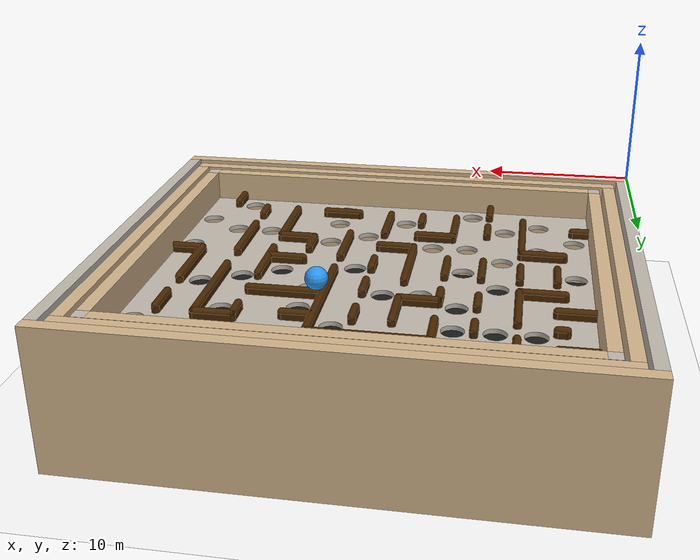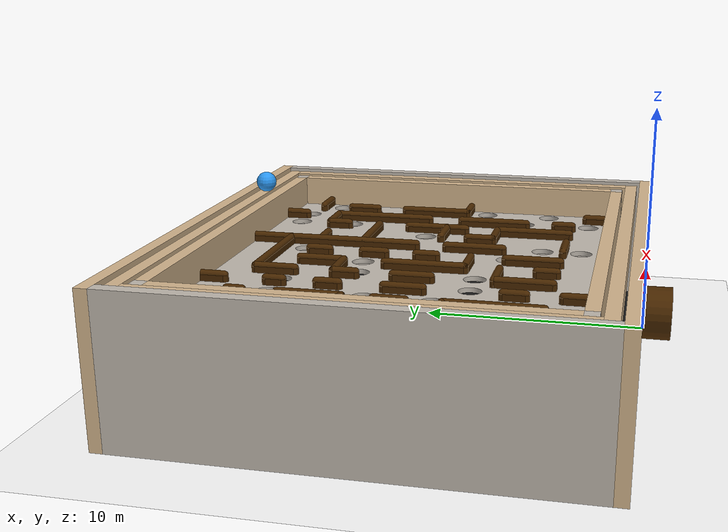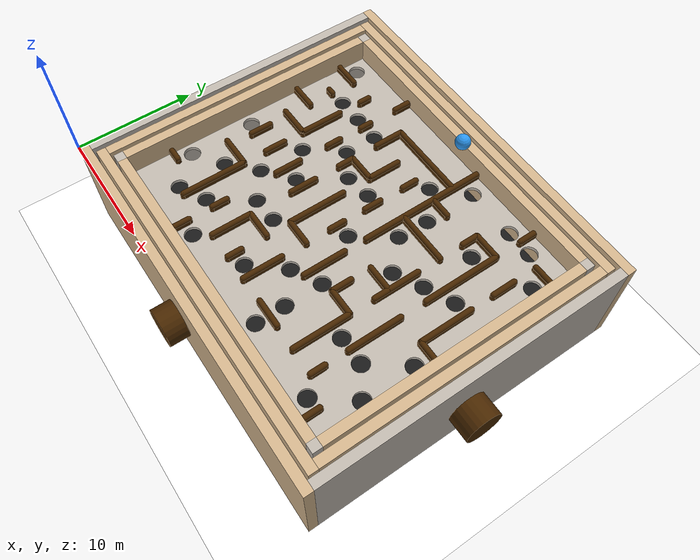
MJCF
<!-- A MuJoCo model of the CyberRunner Labyrinth-playing robot. Authored by: Brett Karopczyc -->
<mujoco model="cyberrunner">
    <asset>
        <texture type="skybox" builtin="gradient" rgb1="0.3 0.5 0.7" rgb2="0 0 0" width="512" height="3072"/>

        <material name="frame" class="frame" rgba=".8235 0.706 0.549 1"/>
        <material name="wall" rgba="0.285 0.151 0.00 1.0"/>
        <material name="ball" rgba="0.169 0.597 0.950 1"/>

        <texture name="outer_markers" type="cube" fileup="assets/outer_markers_up.png" filedown="assets/outer_markers_down.png" rgb1=".8235 0.706 0.549"/>
        <material name="outer_markers" class="frame" texture="outer_markers" texuniform="true"/>

        <texture name="inner_markers" type="cube" filefront="assets/inner_markers_front.png" rgb1=".8235 0.706 0.549"/>
        <material name="inner_markers" class="frame" texture="inner_markers"/>

        <mesh name="board_mesh" file="assets/board_mesh.obj" scale="0.1 0.1 0.1" inertia="exact"/>
        <texture name="board_face" type="2d" file="assets/labyrinth.png"/>
        <material name="board" class="frame" texture="board_face"/>
    </asset>

    <default>
        <!-- Update density for CGS units (g/cm^3) -->
        <geom density="1"/>

        <!-- Named classes -->
        <default class="frame">
            <geom material="frame" density="0.68"/>   <!-- Density of indoor beech wood is about 0.68 g/cm^3 -->
            <material specular="0.2"/>
        </default>
        <default class="walls">
            <geom material="wall" density="1.04"/>  <!-- Approximate density of ABS plastic. Not sure what type of plastic the walls are made from. -->
        </default>
    </default>

    <option gravity="0 0 -980.665" timestep="0.0005" integrator="implicitfast"/>   <!-- Gravity units are cm/s^2 -->

    <visual>
        <global offwidth="1280" offheight="720"/>
        <headlight ambient="0.3 0.3 0.3" diffuse="0.3 0.3 0.3" specular="0.3 0.3 0.3"/>
        <quality shadowsize="8192"/>
    </visual>

    <worldbody>
        <light diffuse="0.5 0.5 0.5" specular="0.3 0.3 0.3" pos="16.2 13.5 200" dir="0 0 -1"/>
        <geom type="plane" pos="0 0 -9.3" size="0 0 0.1" rgba="1 1 1 1"/>

        <camera name="intrinsic_cam" resolution="1280 720" sensorsize=".576 .360" focalpixel="396.115 395.558" principalpixel="2.914 -4.557" pos="16.6 14.3 25" zaxis="0 0 1"/>
        <camera name="fov_camera" resolution="1280 720" fovy="75" pos="16.6 14.3 25" zaxis="0 0 1"/>

        <body name="outer_frame" childclass="frame">
            <!-- Outer Frame -->
            <geom type="box" pos="16.6 0.4 -4.65" size="16.6 0.4 4.65"/>
            <geom type="box" pos="16.6 28.2 -4.65" size="16.6 0.4 4.65"/>
            <geom type="box" pos="0.4 14.3 -4.65" size="0.4 13.5 4.65" material="outer_markers"/>
            <geom type="box" pos="32.8 14.3 -4.65" size="0.4 13.5 4.65" material="outer_markers"/>
            <geom type="box" pos="16.6 14.3 -8.5" size="15.8 13.5 0.1" rgba="0.1 0.1 0.1 1"/>

            <!-- Knobs -->
            <geom type="cylinder" size="1.6" fromto="15.6 0 -4.4 15.6 -1.7 -4.4" class="walls"/>
            <geom type="cylinder" size="1.6" fromto="33.2 13.7 -5.0 35.2 13.7 -5.0" class="walls"/>

            <body name="middle_frame" childclass="frame" pos="1 1 -0.2">
                <joint name="y_rot" type="hinge" axis="0 1 0" pos="15.6 0 -1.0" range="-8 8" limited="true" solimplimit="0.995 0.999 0.1 0.5 1"/>

                <!-- Middle Frame -->
                <geom type="box" pos="15.6 0.4 -1.0" size="15.6 0.4 1.0"/>
                <geom type="box" pos="15.6 26.2 -1.0" size="15.6 0.4 1.0"/>
                <geom type="box" pos="0.4 13.3 -1.0" size="0.4 12.5 1.0"/>
                <geom type="box" pos="30.8 13.3 -1.0" size="0.4 12.5 1.0"/>

                <body name="inner_frame" childclass="frame" pos="1.05 1 -0.1">
                    <joint name="x_rot" type="hinge" axis="1 0 0" pos="0 12.3 -1.0" range="-8 8" limited="true" solimplimit="0.995 0.999 0.1 0.5 1"/>

                    <!-- Inner Frame -->
                    <geom type="box" pos="14.55 0.4 -1.0" size="13.75 0.4 1.0"/>
                    <geom type="box" pos="14.55 24.2 -1.0" size="13.75 0.4 1.0"/>
                    <geom type="box" pos="0.4 12.3 -1.0" size="0.4 11.5 1.0"/>
                    <geom type="box" pos="28.7 12.3 -1.0" size="0.4 11.5 1.0"/>
                    <geom type="box" pos="0.4 0.4 -1.0" size="0.4 0.4 1.0" material="inner_markers"/>
                    <geom type="box" pos="28.7 0.4 -1.0" size="0.4 0.4 1.0" material="inner_markers"/>
                    <geom type="box" pos="0.4 24.2 -1.0" size="0.4 0.4 1.0" material="inner_markers"/>
                    <geom type="box" pos="28.7 24.2 -1.0" size="0.4 0.4 1.0" material="inner_markers"/>

                    <!-- Labyrinth Board -->
                    <body name="board" pos="0.8 0.8 -2.0">
                        <geom type="mesh" mesh="board_mesh" material="board"/>
                        <body name="walls" childclass="walls">
                            <include file="cyberrunner_walls.xml"/>
                        </body>
                    </body>
                </body>
            </body>
        </body>

        <body name="ball" pos="18 24.5 2.0">
            <freejoint name="ball_joint"/>
            <!-- A GraviTrax marble has a radius of 6.35mm (0.25 inches) and weighs about 8.5g -->
            <!-- The calculated density below is in grams/cm^3 -->
            <geom type="sphere" size="0.635" material="ball" density="7.925" solimp="0.99 0.99 0.01" solref="0.001 1"/>
        </body>
    </worldbody>

    <actuator>
        <velocity name="tilt_y" joint="x_rot" gear="1500" ctrllimited="true" ctrlrange="-4000 4000" kv="55"/>
        <velocity name="tilt_x" joint="y_rot" gear="1500" ctrllimited="true" ctrlrange="-4000 4000" kv="55"/>
    </actuator>
</mujoco>

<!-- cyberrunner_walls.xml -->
<mujoco model="cyberrunner_walls">
    <geom type="box" size="0.250" fromto="0.000 20.450 0.150 2.250 20.450 0.150" />
    <geom type="cylinder" size="0.250" fromto="0.000 20.450 0 0.000 20.450 0.400" />
    <geom type="cylinder" size="0.250" fromto="2.250 20.450 0 2.250 20.450 0.400" />
    <geom type="capsule" size="0.250" fromto="0.000 20.450 0.400 2.250 20.450 0.400" />
    <geom type="box" size="0.250" fromto="0.000 15.900 0.150 2.250 15.900 0.150" />
    <geom type="cylinder" size="0.250" fromto="0.000 15.900 0 0.000 15.900 0.400" />
    <geom type="cylinder" size="0.250" fromto="2.250 15.900 0 2.250 15.900 0.400" />
    <geom type="capsule" size="0.250" fromto="0.000 15.900 0.400 2.250 15.900 0.400" />
    <geom type="box" size="0.250" fromto="1.750 18.200 0.150 2.250 18.200 0.150" />
    <geom type="cylinder" size="0.250" fromto="1.750 18.200 0 1.750 18.200 0.400" />
    <geom type="cylinder" size="0.250" fromto="2.250 18.200 0 2.250 18.200 0.400" />
    <geom type="capsule" size="0.250" fromto="1.750 18.200 0.400 2.250 18.200 0.400" />
    <geom type="box" size="0.250" fromto="9.200 20.450 0.150 16.200 20.450 0.150" />
    <geom type="cylinder" size="0.250" fromto="9.200 20.450 0 9.200 20.450 0.400" />
    <geom type="cylinder" size="0.250" fromto="16.200 20.450 0 16.200 20.450 0.400" />
    <geom type="capsule" size="0.250" fromto="9.200 20.450 0.400 16.200 20.450 0.400" />
    <geom type="box" size="0.250" fromto="9.200 15.550 0.150 11.600 15.550 0.150" />
    <geom type="cylinder" size="0.250" fromto="9.200 15.550 0 9.200 15.550 0.400" />
    <geom type="cylinder" size="0.250" fromto="11.600 15.550 0 11.600 15.550 0.400" />
    <geom type="capsule" size="0.250" fromto="9.200 15.550 0.400 11.600 15.550 0.400" />
    <geom type="box" size="0.250" fromto="1.750 13.700 0.150 4.500 13.700 0.150" />
    <geom type="cylinder" size="0.250" fromto="1.750 13.700 0 1.750 13.700 0.400" />
    <geom type="cylinder" size="0.250" fromto="4.500 13.700 0 4.500 13.700 0.400" />
    <geom type="capsule" size="0.250" fromto="1.750 13.700 0.400 4.500 13.700 0.400" />
    <geom type="box" size="0.250" fromto="1.750 7.950 0.150 4.500 7.950 0.150" />
    <geom type="cylinder" size="0.250" fromto="1.750 7.950 0 1.750 7.950 0.400" />
    <geom type="cylinder" size="0.250" fromto="4.500 7.950 0 4.500 7.950 0.400" />
    <geom type="capsule" size="0.250" fromto="1.750 7.950 0.400 4.500 7.950 0.400" />
    <geom type="box" size="0.250" fromto="0.000 3.650 0.150 1.100 3.650 0.150" />
    <geom type="cylinder" size="0.250" fromto="0.000 3.650 0 0.000 3.650 0.400" />
    <geom type="cylinder" size="0.250" fromto="1.100 3.650 0 1.100 3.650 0.400" />
    <geom type="capsule" size="0.250" fromto="0.000 3.650 0.400 1.100 3.650 0.400" />
    <geom type="box" size="0.250" fromto="9.200 5.800 0.150 11.600 5.800 0.150" />
    <geom type="cylinder" size="0.250" fromto="9.200 5.800 0 9.200 5.800 0.400" />
    <geom type="cylinder" size="0.250" fromto="11.600 5.800 0 11.600 5.800 0.400" />
    <geom type="capsule" size="0.250" fromto="9.200 5.800 0.400 11.600 5.800 0.400" />
    <geom type="box" size="0.250" fromto="11.600 7.950 0.150 13.900 7.950 0.150" />
    <geom type="cylinder" size="0.250" fromto="11.600 7.950 0 11.600 7.950 0.400" />
    <geom type="cylinder" size="0.250" fromto="13.900 7.950 0 13.900 7.950 0.400" />
    <geom type="capsule" size="0.250" fromto="11.600 7.950 0.400 13.900 7.950 0.400" />
    <geom type="box" size="0.250" fromto="16.200 15.550 0.150 20.800 15.550 0.150" />
    <geom type="cylinder" size="0.250" fromto="16.200 15.550 0 16.200 15.550 0.400" />
    <geom type="cylinder" size="0.250" fromto="20.800 15.550 0 20.800 15.550 0.400" />
    <geom type="capsule" size="0.250" fromto="16.200 15.550 0.400 20.800 15.550 0.400" />
    <geom type="box" size="0.250" fromto="16.200 18.450 0.150 18.000 18.450 0.150" />
    <geom type="cylinder" size="0.250" fromto="16.200 18.450 0 16.200 18.450 0.400" />
    <geom type="cylinder" size="0.250" fromto="18.000 18.450 0 18.000 18.450 0.400" />
    <geom type="capsule" size="0.250" fromto="16.200 18.450 0.400 18.000 18.450 0.400" />
    <geom type="box" size="0.250" fromto="16.200 2.400 0.150 18.600 2.400 0.150" />
    <geom type="cylinder" size="0.250" fromto="16.200 2.400 0 16.200 2.400 0.400" />
    <geom type="cylinder" size="0.250" fromto="18.600 2.400 0 18.600 2.400 0.400" />
    <geom type="capsule" size="0.250" fromto="16.200 2.400 0.400 18.600 2.400 0.400" />
    <geom type="box" size="0.250" fromto="18.500 7.250 0.150 20.800 7.250 0.150" />
    <geom type="cylinder" size="0.250" fromto="18.500 7.250 0 18.500 7.250 0.400" />
    <geom type="cylinder" size="0.250" fromto="20.800 7.250 0 20.800 7.250 0.400" />
    <geom type="capsule" size="0.250" fromto="18.500 7.250 0.400 20.800 7.250 0.400" />
    <geom type="box" size="0.250" fromto="18.500 10.750 0.150 20.800 10.750 0.150" />
    <geom type="cylinder" size="0.250" fromto="18.500 10.750 0 18.500 10.750 0.400" />
    <geom type="cylinder" size="0.250" fromto="20.800 10.750 0 20.800 10.750 0.400" />
    <geom type="capsule" size="0.250" fromto="18.500 10.750 0.400 20.800 10.750 0.400" />
    <geom type="box" size="0.250" fromto="20.800 19.150 0.150 23.100 19.150 0.150" />
    <geom type="cylinder" size="0.250" fromto="20.800 19.150 0 20.800 19.150 0.400" />
    <geom type="cylinder" size="0.250" fromto="23.100 19.150 0 23.100 19.150 0.400" />
    <geom type="capsule" size="0.250" fromto="20.800 19.150 0.400 23.100 19.150 0.400" />
    <geom type="box" size="0.250" fromto="25.500 10.150 0.150 27.600 10.150 0.150" />
    <geom type="cylinder" size="0.250" fromto="25.500 10.150 0 25.500 10.150 0.400" />
    <geom type="cylinder" size="0.250" fromto="27.600 10.150 0 27.600 10.150 0.400" />
    <geom type="capsule" size="0.250" fromto="25.500 10.150 0.400 27.600 10.150 0.400" />
    <geom type="box" size="0.250" fromto="25.500 21.000 0.150 27.600 21.000 0.150" />
    <geom type="cylinder" size="0.250" fromto="25.500 21.000 0 25.500 21.000 0.400" />
    <geom type="cylinder" size="0.250" fromto="27.600 21.000 0 27.600 21.000 0.400" />
    <geom type="capsule" size="0.250" fromto="25.500 21.000 0.400 27.600 21.000 0.400" />
    <geom type="box" size="0.250" fromto="4.500 19.550 0.150 4.500 20.450 0.150" />
    <geom type="cylinder" size="0.250" fromto="4.500 19.550 0 4.500 19.550 0.400" />
    <geom type="cylinder" size="0.250" fromto="4.500 20.450 0 4.500 20.450 0.400" />
    <geom type="capsule" size="0.250" fromto="4.500 19.550 0.400 4.500 20.450 0.400" />
    <geom type="box" size="0.250" fromto="4.500 13.700 0.150 4.500 17.450 0.150" />
    <geom type="cylinder" size="0.250" fromto="4.500 13.700 0 4.500 13.700 0.400" />
    <geom type="cylinder" size="0.250" fromto="4.500 17.450 0 4.500 17.450 0.400" />
    <geom type="capsule" size="0.250" fromto="4.500 13.700 0.400 4.500 17.450 0.400" />
    <geom type="box" size="0.250" fromto="6.900 14.550 0.150 6.900 15.850 0.150" />
    <geom type="cylinder" size="0.250" fromto="6.900 14.550 0 6.900 14.550 0.400" />
    <geom type="cylinder" size="0.250" fromto="6.900 15.850 0 6.900 15.850 0.400" />
    <geom type="capsule" size="0.250" fromto="6.900 14.550 0.400 6.900 15.850 0.400" />
    <geom type="box" size="0.250" fromto="6.900 17.950 0.150 6.900 18.950 0.150" />
    <geom type="cylinder" size="0.250" fromto="6.900 17.950 0 6.900 17.950 0.400" />
    <geom type="cylinder" size="0.250" fromto="6.900 18.950 0 6.900 18.950 0.400" />
    <geom type="capsule" size="0.250" fromto="6.900 17.950 0.400 6.900 18.950 0.400" />
    <geom type="box" size="0.250" fromto="6.900 21.550 0.150 6.900 23.100 0.150" />
    <geom type="cylinder" size="0.250" fromto="6.900 21.550 0 6.900 21.550 0.400" />
    <geom type="cylinder" size="0.250" fromto="6.900 23.100 0 6.900 23.100 0.400" />
    <geom type="capsule" size="0.250" fromto="6.900 21.550 0.400 6.900 23.100 0.400" />
    <geom type="box" size="0.250" fromto="9.200 14.150 0.150 9.200 15.550 0.150" />
    <geom type="cylinder" size="0.250" fromto="9.200 14.150 0 9.200 14.150 0.400" />
    <geom type="cylinder" size="0.250" fromto="9.200 15.550 0 9.200 15.550 0.400" />
    <geom type="capsule" size="0.250" fromto="9.200 14.150 0.400 9.200 15.550 0.400" />
    <geom type="box" size="0.250" fromto="9.200 17.950 0.150 9.200 20.450 0.150" />
    <geom type="cylinder" size="0.250" fromto="9.200 17.950 0 9.200 17.950 0.400" />
    <geom type="cylinder" size="0.250" fromto="9.200 20.450 0 9.200 20.450 0.400" />
    <geom type="capsule" size="0.250" fromto="9.200 17.950 0.400 9.200 20.450 0.400" />
    <geom type="box" size="0.250" fromto="11.600 15.550 0.150 11.600 18.350 0.150" />
    <geom type="cylinder" size="0.250" fromto="11.600 15.550 0 11.600 15.550 0.400" />
    <geom type="cylinder" size="0.250" fromto="11.600 18.350 0 11.600 18.350 0.400" />
    <geom type="capsule" size="0.250" fromto="11.600 15.550 0.400 11.600 18.350 0.400" />
    <geom type="box" size="0.250" fromto="13.900 13.450 0.150 13.900 14.950 0.150" />
    <geom type="cylinder" size="0.250" fromto="13.900 13.450 0 13.900 13.450 0.400" />
    <geom type="cylinder" size="0.250" fromto="13.900 14.950 0 13.900 14.950 0.400" />
    <geom type="capsule" size="0.250" fromto="13.900 13.450 0.400 13.900 14.950 0.400" />
    <geom type="box" size="0.250" fromto="13.900 17.150 0.150 13.900 18.450 0.150" />
    <geom type="cylinder" size="0.250" fromto="13.900 17.150 0 13.900 17.150 0.400" />
    <geom type="cylinder" size="0.250" fromto="13.900 18.450 0 13.900 18.450 0.400" />
    <geom type="capsule" size="0.250" fromto="13.900 17.150 0.400 13.900 18.450 0.400" />
    <geom type="box" size="0.250" fromto="16.200 11.950 0.150 16.200 23.100 0.150" />
    <geom type="cylinder" size="0.250" fromto="16.200 11.950 0 16.200 11.950 0.400" />
    <geom type="cylinder" size="0.250" fromto="16.200 23.100 0 16.200 23.100 0.400" />
    <geom type="capsule" size="0.250" fromto="16.200 11.950 0.400 16.200 23.100 0.400" />
    <geom type="box" size="0.250" fromto="20.800 9.450 0.150 20.800 13.450 0.150" />
    <geom type="cylinder" size="0.250" fromto="20.800 9.450 0 20.800 9.450 0.400" />
    <geom type="cylinder" size="0.250" fromto="20.800 13.450 0 20.800 13.450 0.400" />
    <geom type="capsule" size="0.250" fromto="20.800 9.450 0.400 20.800 13.450 0.400" />
    <geom type="box" size="0.250" fromto="20.800 17.750 0.150 20.800 19.150 0.150" />
    <geom type="cylinder" size="0.250" fromto="20.800 17.750 0 20.800 17.750 0.400" />
    <geom type="cylinder" size="0.250" fromto="20.800 19.150 0 20.800 19.150 0.400" />
    <geom type="capsule" size="0.250" fromto="20.800 17.750 0.400 20.800 19.150 0.400" />
    <geom type="box" size="0.250" fromto="23.100 12.450 0.150 23.100 19.150 0.150" />
    <geom type="cylinder" size="0.250" fromto="23.100 12.450 0 23.100 12.450 0.400" />
    <geom type="cylinder" size="0.250" fromto="23.100 19.150 0 23.100 19.150 0.400" />
    <geom type="capsule" size="0.250" fromto="23.100 12.450 0.400 23.100 19.150 0.400" />
    <geom type="box" size="0.250" fromto="23.100 21.550 0.150 23.100 23.100 0.150" />
    <geom type="cylinder" size="0.250" fromto="23.100 21.550 0 23.100 21.550 0.400" />
    <geom type="cylinder" size="0.250" fromto="23.100 23.100 0 23.100 23.100 0.400" />
    <geom type="capsule" size="0.250" fromto="23.100 21.550 0.400 23.100 23.100 0.400" />
    <geom type="box" size="0.250" fromto="25.500 16.850 0.150 25.500 18.850 0.150" />
    <geom type="cylinder" size="0.250" fromto="25.500 16.850 0 25.500 16.850 0.400" />
    <geom type="cylinder" size="0.250" fromto="25.500 18.850 0 25.500 18.850 0.400" />
    <geom type="capsule" size="0.250" fromto="25.500 16.850 0.400 25.500 18.850 0.400" />
    <geom type="box" size="0.250" fromto="25.500 10.150 0.150 25.500 14.750 0.150" />
    <geom type="cylinder" size="0.250" fromto="25.500 10.150 0 25.500 10.150 0.400" />
    <geom type="cylinder" size="0.250" fromto="25.500 14.750 0 25.500 14.750 0.400" />
    <geom type="capsule" size="0.250" fromto="25.500 10.150 0.400 25.500 14.750 0.400" />
    <geom type="box" size="0.250" fromto="16.200 6.250 0.150 16.200 9.950 0.150" />
    <geom type="cylinder" size="0.250" fromto="16.200 6.250 0 16.200 6.250 0.400" />
    <geom type="cylinder" size="0.250" fromto="16.200 9.950 0 16.200 9.950 0.400" />
    <geom type="capsule" size="0.250" fromto="16.200 6.250 0.400 16.200 9.950 0.400" />
    <geom type="box" size="0.250" fromto="18.500 7.250 0.150 18.500 8.950 0.150" />
    <geom type="cylinder" size="0.250" fromto="18.500 7.250 0 18.500 7.250 0.400" />
    <geom type="cylinder" size="0.250" fromto="18.500 8.950 0 18.500 8.950 0.400" />
    <geom type="capsule" size="0.250" fromto="18.500 7.250 0.400 18.500 8.950 0.400" />
    <geom type="box" size="0.250" fromto="20.800 2.350 0.150 20.800 7.250 0.150" />
    <geom type="cylinder" size="0.250" fromto="20.800 2.350 0 20.800 2.350 0.400" />
    <geom type="cylinder" size="0.250" fromto="20.800 7.250 0 20.800 7.250 0.400" />
    <geom type="capsule" size="0.250" fromto="20.800 2.350 0.400 20.800 7.250 0.400" />
    <geom type="box" size="0.250" fromto="23.100 2.350 0.150 23.100 3.550 0.150" />
    <geom type="cylinder" size="0.250" fromto="23.100 2.350 0 23.100 2.350 0.400" />
    <geom type="cylinder" size="0.250" fromto="23.100 3.550 0 23.100 3.550 0.400" />
    <geom type="capsule" size="0.250" fromto="23.100 2.350 0.400 23.100 3.550 0.400" />
    <geom type="box" size="0.250" fromto="23.100 5.550 0.150 23.100 10.150 0.150" />
    <geom type="cylinder" size="0.250" fromto="23.100 5.550 0 23.100 5.550 0.400" />
    <geom type="cylinder" size="0.250" fromto="23.100 10.150 0 23.100 10.150 0.400" />
    <geom type="capsule" size="0.250" fromto="23.100 5.550 0.400 23.100 10.150 0.400" />
    <geom type="box" size="0.250" fromto="25.500 0.000 0.150 25.500 1.550 0.150" />
    <geom type="cylinder" size="0.250" fromto="25.500 0.000 0 25.500 0.000 0.400" />
    <geom type="cylinder" size="0.250" fromto="25.500 1.550 0 25.500 1.550 0.400" />
    <geom type="capsule" size="0.250" fromto="25.500 0.000 0.400 25.500 1.550 0.400" />
    <geom type="box" size="0.250" fromto="2.200 10.050 0.150 2.200 11.850 0.150" />
    <geom type="cylinder" size="0.250" fromto="2.200 10.050 0 2.200 10.050 0.400" />
    <geom type="cylinder" size="0.250" fromto="2.200 11.850 0 2.200 11.850 0.400" />
    <geom type="capsule" size="0.250" fromto="2.200 10.050 0.400 2.200 11.850 0.400" />
    <geom type="box" size="0.250" fromto="4.500 10.050 0.150 4.500 11.850 0.150" />
    <geom type="cylinder" size="0.250" fromto="4.500 10.050 0 4.500 10.050 0.400" />
    <geom type="cylinder" size="0.250" fromto="4.500 11.850 0 4.500 11.850 0.400" />
    <geom type="capsule" size="0.250" fromto="4.500 10.050 0.400 4.500 11.850 0.400" />
    <geom type="box" size="0.250" fromto="6.900 9.550 0.150 6.900 11.850 0.150" />
    <geom type="cylinder" size="0.250" fromto="6.900 9.550 0 6.900 9.550 0.400" />
    <geom type="cylinder" size="0.250" fromto="6.900 11.850 0 6.900 11.850 0.400" />
    <geom type="capsule" size="0.250" fromto="6.900 9.550 0.400 6.900 11.850 0.400" />
    <geom type="box" size="0.250" fromto="9.200 9.550 0.150 9.200 11.850 0.150" />
    <geom type="cylinder" size="0.250" fromto="9.200 9.550 0 9.200 9.550 0.400" />
    <geom type="cylinder" size="0.250" fromto="9.200 11.850 0 9.200 11.850 0.400" />
    <geom type="capsule" size="0.250" fromto="9.200 9.550 0.400 9.200 11.850 0.400" />
    <geom type="box" size="0.250" fromto="4.500 2.350 0.150 4.500 7.950 0.150" />
    <geom type="cylinder" size="0.250" fromto="4.500 2.350 0 4.500 2.350 0.400" />
    <geom type="cylinder" size="0.250" fromto="4.500 7.950 0 4.500 7.950 0.400" />
    <geom type="capsule" size="0.250" fromto="4.500 2.350 0.400 4.500 7.950 0.400" />
    <geom type="box" size="0.250" fromto="6.900 3.650 0.150 6.900 4.950 0.150" />
    <geom type="cylinder" size="0.250" fromto="6.900 3.650 0 6.900 3.650 0.400" />
    <geom type="cylinder" size="0.250" fromto="6.900 4.950 0 6.900 4.950 0.400" />
    <geom type="capsule" size="0.250" fromto="6.900 3.650 0.400 6.900 4.950 0.400" />
    <geom type="box" size="0.250" fromto="6.900 0.000 0.150 6.900 1.550 0.150" />
    <geom type="cylinder" size="0.250" fromto="6.900 0.000 0 6.900 0.000 0.400" />
    <geom type="cylinder" size="0.250" fromto="6.900 1.550 0 6.900 1.550 0.400" />
    <geom type="capsule" size="0.250" fromto="6.900 0.000 0.400 6.900 1.550 0.400" />
    <geom type="box" size="0.250" fromto="9.200 2.350 0.150 9.200 5.750 0.150" />
    <geom type="cylinder" size="0.250" fromto="9.200 2.350 0 9.200 2.350 0.400" />
    <geom type="cylinder" size="0.250" fromto="9.200 5.750 0 9.200 5.750 0.400" />
    <geom type="capsule" size="0.250" fromto="9.200 2.350 0.400 9.200 5.750 0.400" />
    <geom type="box" size="0.250" fromto="11.600 2.350 0.150 11.600 3.550 0.150" />
    <geom type="cylinder" size="0.250" fromto="11.600 2.350 0 11.600 2.350 0.400" />
    <geom type="cylinder" size="0.250" fromto="11.600 3.550 0 11.600 3.550 0.400" />
    <geom type="capsule" size="0.250" fromto="11.600 2.350 0.400 11.600 3.550 0.400" />
    <geom type="box" size="0.250" fromto="11.600 7.950 0.150 11.600 12.950 0.150" />
    <geom type="cylinder" size="0.250" fromto="11.600 7.950 0 11.600 7.950 0.400" />
    <geom type="cylinder" size="0.250" fromto="11.600 12.950 0 11.600 12.950 0.400" />
    <geom type="capsule" size="0.250" fromto="11.600 7.950 0.400 11.600 12.950 0.400" />
    <geom type="box" size="0.250" fromto="13.900 2.350 0.150 13.900 5.750 0.150" />
    <geom type="cylinder" size="0.250" fromto="13.900 2.350 0 13.900 2.350 0.400" />
    <geom type="cylinder" size="0.250" fromto="13.900 5.750 0 13.900 5.750 0.400" />
    <geom type="capsule" size="0.250" fromto="13.900 2.350 0.400 13.900 5.750 0.400" />
    <geom type="box" size="0.250" fromto="13.900 10.150 0.150 13.900 11.450 0.150" />
    <geom type="cylinder" size="0.250" fromto="13.900 10.150 0 13.900 10.150 0.400" />
    <geom type="cylinder" size="0.250" fromto="13.900 11.450 0 13.900 11.450 0.400" />
    <geom type="capsule" size="0.250" fromto="13.900 10.150 0.400 13.900 11.450 0.400" />
</mujoco>
